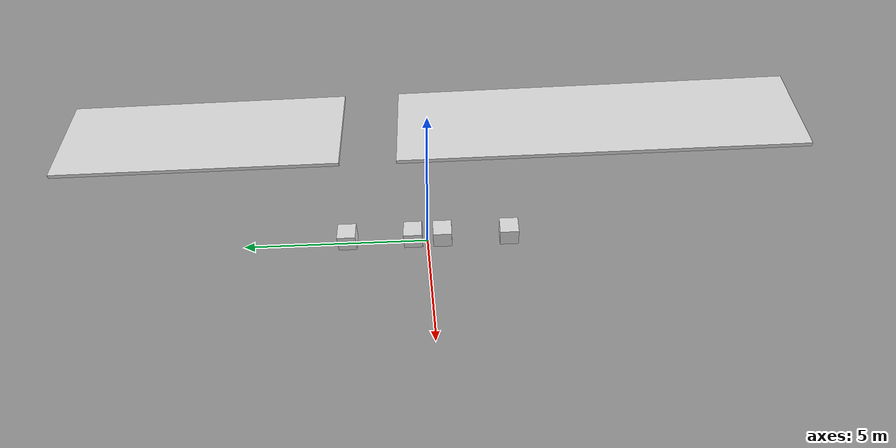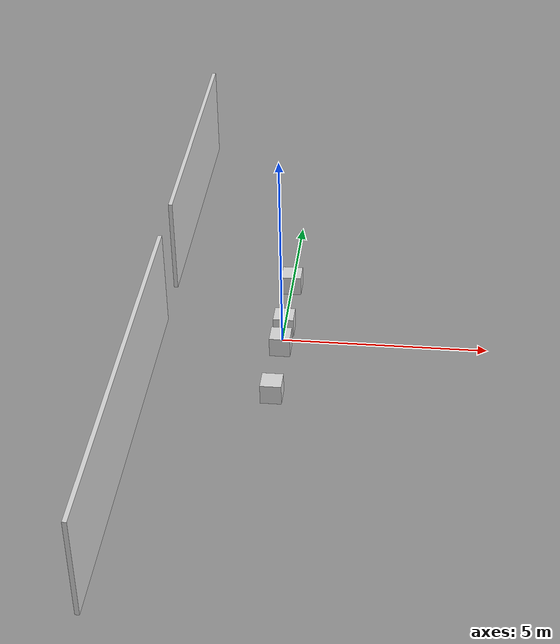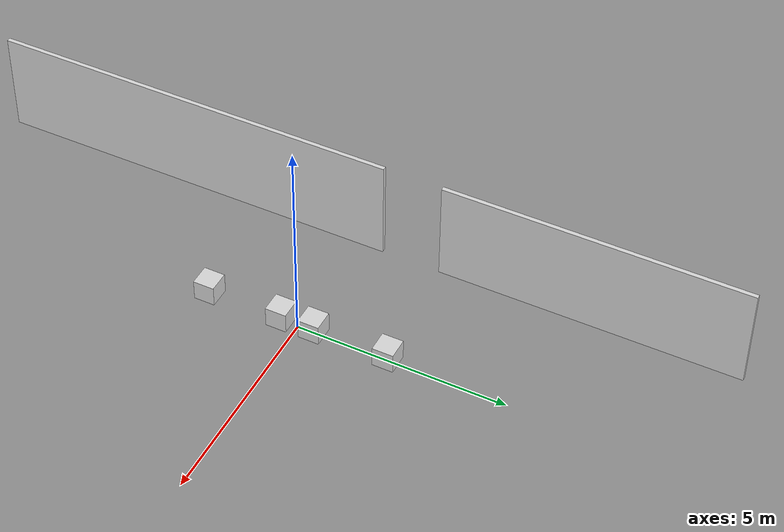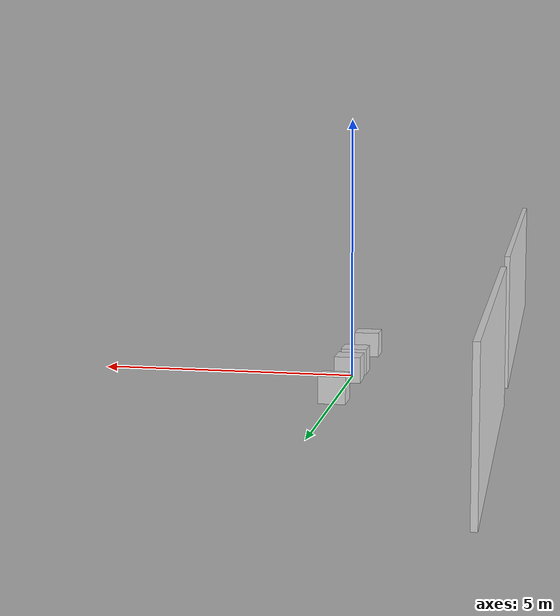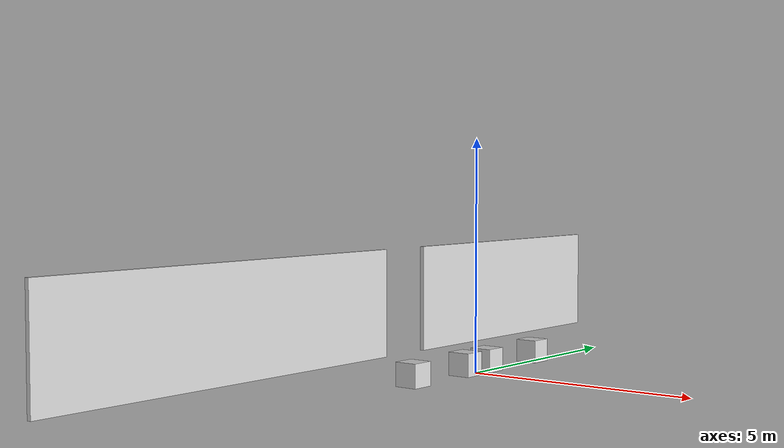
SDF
<?xml version="1.0" ?>
<sdf version="1.6">
  <model name="trap_d_1_1_n">
    <static>true</static>
     <include>
      <name>op_ll</name>
      <uri>model://vis_cue_normal</uri>
      <pose>0 2.2 0.25 0 0 0</pose>
    </include>
    <include>
      <name>op_lr</name>
      <uri>model://vis_cue_normal</uri>
      <pose>0 0.4 0.25 0 0 0</pose>
    </include>
    <include>
      <name>op_rl</name>
      <uri>model://vis_cue_normal</uri>
      <pose>0 -0.4 0.25 0 0 0</pose>
    </include>
    <include>
      <name>op_rr</name>
      <uri>model://vis_cue_normal</uri>
      <pose>0 -2.2 0.25 0 0 0</pose>
    </include>

    <include>
      <name>gate_l</name>
      <uri>model://study_track_gate_l</uri>
      <pose>0 0 0 0 0 0</pose>
    </include>

  </model>
</sdf>

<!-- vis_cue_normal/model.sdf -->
<sdf version="1.6">
  <model name="vis_cue_normal">
    <static>false</static>
    <pose>0 0 0.25 0 0 0</pose>
    <link name='vis_cue_normal'>
      <inertial>
        <mass>1</mass>
        <inertia>
          <ixx>0.166667</ixx>
          <ixy>0</ixy>
          <ixz>0</ixz>
          <iyy>0.166667</iyy>
          <iyz>0</iyz>
          <izz>0.166667</izz>
        </inertia>
      </inertial>
      <collision name='collision'>
        <geometry>
          <box>
            <size>0.5 0.5 0.5</size>
          </box>
        </geometry>
        <max_contacts>10</max_contacts>
        <surface>
          <contact>
            <ode/>
          </contact>
          <bounce/>
          <friction>
            <torsional>
              <ode/>
            </torsional>
            <ode/>
          </friction>
        </surface>
      </collision>
      <visual name='box_visual'>
        <geometry>
          <box>
            <size>0.5 0.5 0.5</size>
          </box>
        </geometry>
        <material>
          <ambient>0.85 0.85 0.85 1</ambient>
          <diffuse>0.85 0.85 0.85 1</diffuse>
          <specular>0.15 0.15 0.15 1</specular>
          <emissive>0 0 0 0</emissive>
        </material>
      </visual>
      <self_collide>0</self_collide>
      <kinematic>0</kinematic>
    </link>
  </model>
</sdf>

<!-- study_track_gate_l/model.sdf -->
<sdf version="1.6">
  <model name="study_track_gate_l">
    <static>true</static>

    <link name='wall_l'>
      <pose>-3 5.6 1.25 0 0 0</pose>
      <collision name='collision'>
        <geometry>
          <box>
            <size>0.1 7.2 2.5</size>
          </box>
        </geometry>
      </collision>
      <visual name='box_visual'>
        <geometry>
          <box>
            <size>0.1 7.2 2.5</size>
          </box>
        </geometry>
        <material>
          <ambient>0.85 0.85 0.85 1</ambient>
          <diffuse>0.85 0.85 0.85 1</diffuse>
          <specular>0.15 0.15 0.15 1</specular>
          <emissive>0 0 0 0</emissive>
        </material>
      </visual>
    </link>

    <link name='wall_r'>
      <pose>-3 -4.3 1.25 0 0 0</pose>
      <collision name='collision'>
        <geometry>
          <box>
            <size>0.1 9.8 2.5</size>
          </box>
        </geometry>
      </collision>
      <visual name='box_visual'>
        <geometry>
          <box>
            <size>0.1 9.8 2.5</size>
          </box>
        </geometry>
        <material>
          <ambient>0.85 0.85 0.85 1</ambient>
          <diffuse>0.85 0.85 0.85 1</diffuse>
          <specular>0.15 0.15 0.15 1</specular>
          <emissive>0 0 0 0</emissive>
        </material>
      </visual>
    </link>

  </model>
</sdf>
